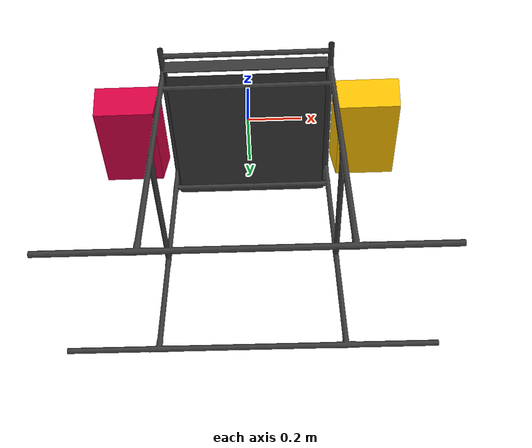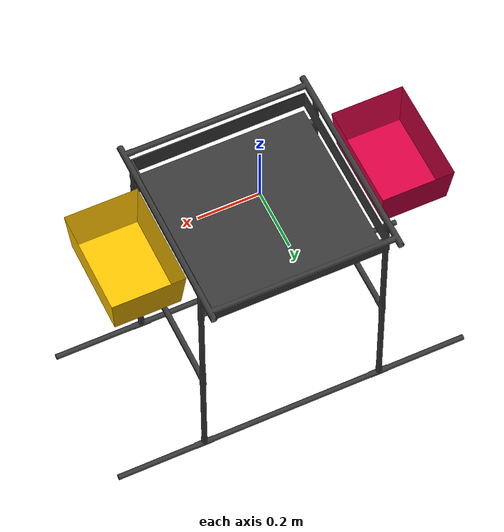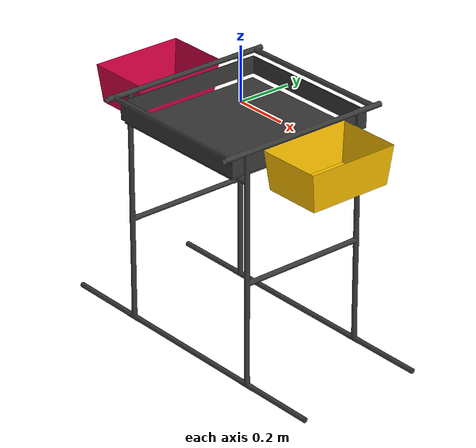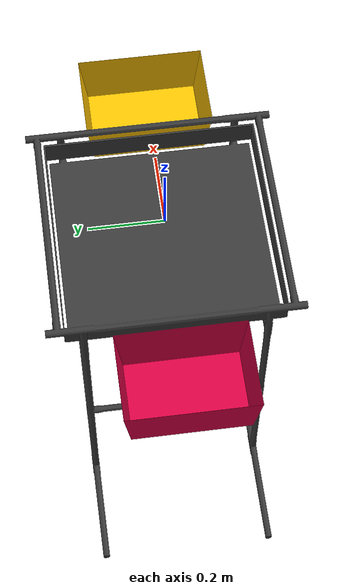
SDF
<?xml version="1.0"?>
<sdf version='1.7'>
  <model name='collection_table'>
    <static>true</static>
    <link name='base_link'>
      <pose frame=''>0 0 0 0 -0 0</pose>
      <inertial>
        <pose frame=''>0 0 0 0 -0 0</pose>
        <mass>1</mass>
        <inertia>
          <ixx>0.166667</ixx>
          <ixy>0</ixy>
          <ixz>0</ixz>
          <iyy>0.166667</iyy>
          <iyz>0</iyz>
          <izz>0.166667</izz>
        </inertia>
      </inertial>
      <collision name='base_link_collision'>
        <pose frame=''>0 0 0 0 -0 0</pose>
        <geometry>
          <mesh>
            <uri>file://robosub25/collection_table/collection_table.dae</uri>
          </mesh>
        </geometry>
      </collision>
      <visual name='base_link_visual'>
        <pose frame=''>0 0 0 0 -0 0</pose>
        <geometry>
          <mesh>
            <uri>file://robosub25/collection_table/collection_table.dae</uri>
          </mesh>
        </geometry>
      </visual>
    </link>
  </model>
</sdf>
